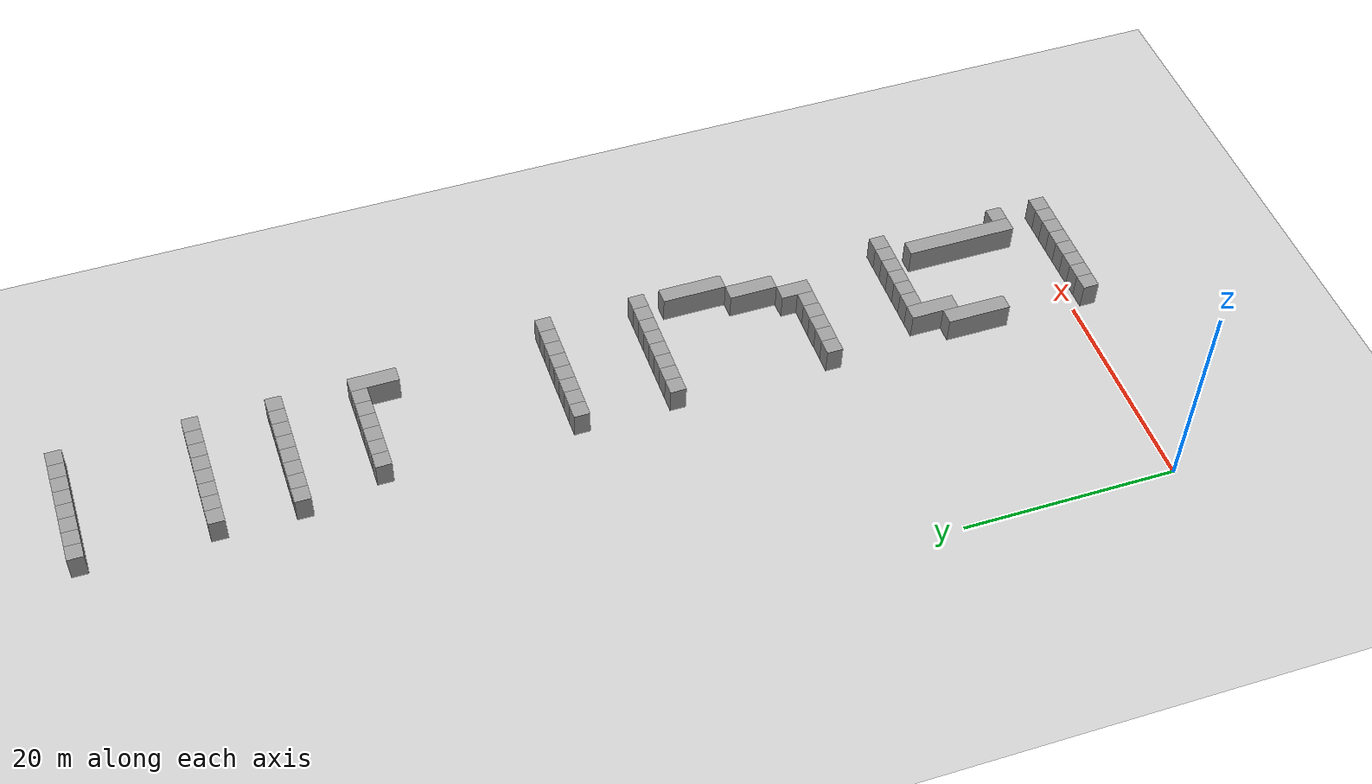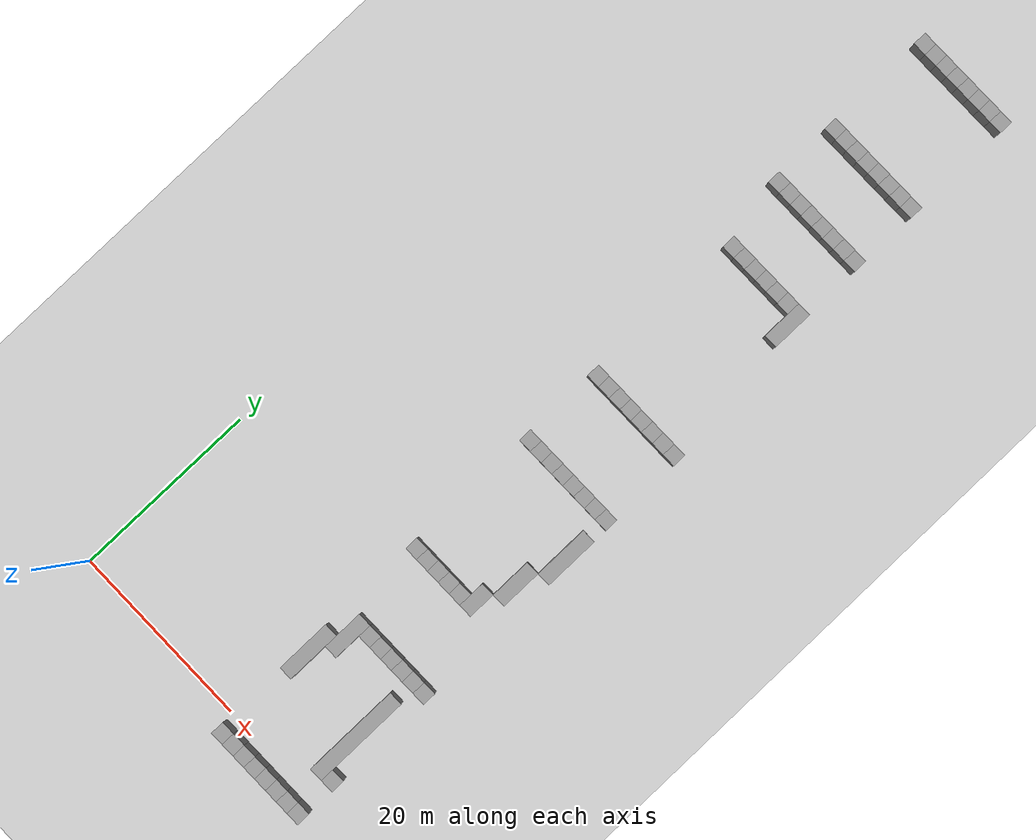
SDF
<sdf version="1.4">
 <world name="1_wall">
  <model name="ground_plane">
   <static>1</static>
   <link name="link">
    <collision name="collision">
     <geometry><plane><normal>0 0 1</normal><size>1000 1000</size></plane></geometry>
     <surface><friction><ode><mu>100</mu><mu2>50</mu2></ode></friction></surface>
    </collision>
    <visual name="visual">
     <cast_shadows>0</cast_shadows>
     <geometry><plane><normal>0 0 1</normal><size>10000 10000</size></plane></geometry>
     <material>
      <script><uri>file://media/materials/scripts/gazebo.material</uri><name>Gazebo/Grey</name></script>
     </material>
    </visual>
    <velocity_decay><linear>0</linear><angular>0</angular></velocity_decay>
   </link>
  </model>
  <model name="Wall_73">
   <static>1</static>
   <link name="Wall_73">
    <collision name="Wall_Collision_73">
     <geometry><box><size>1.5 1.5 2.5</size></box></geometry>
     <pose>0 0 1.25 0 -0 0</pose>
    </collision>
    <visual name="Wall_Visual_73">
     <pose>0 0 1.25 0 -0 0</pose>
     <geometry><box><size>1.5 1.5 2.5</size></box></geometry>
     <material>
      <script><uri>file://media/materials/scripts/gazebo.material</uri><name>Gazebo/Grey</name></script>
     </material>
    </visual>
    <velocity_decay><linear>0</linear><angular>0</angular></velocity_decay>
    <pose>19.5 73.5 0 0 0 1.5707963267948966</pose>
   </link>
  </model>
  <model name="Wall_74">
   <static>1</static>
   <link name="Wall_74">
    <collision name="Wall_Collision_74">
     <geometry><box><size>1.5 1.5 2.5</size></box></geometry>
     <pose>0 0 1.25 0 -0 0</pose>
    </collision>
    <visual name="Wall_Visual_74">
     <pose>0 0 1.25 0 -0 0</pose>
     <geometry><box><size>1.5 1.5 2.5</size></box></geometry>
     <material>
      <script><uri>file://media/materials/scripts/gazebo.material</uri><name>Gazebo/Grey</name></script>
     </material>
    </visual>
    <velocity_decay><linear>0</linear><angular>0</angular></velocity_decay>
    <pose>19.5 81.0 0 0 0 1.5707963267948966</pose>
   </link>
  </model>
  <model name="Wall_75">
   <static>1</static>
   <link name="Wall_75">
    <collision name="Wall_Collision_75">
     <geometry><box><size>1.5 1.5 2.5</size></box></geometry>
     <pose>0 0 1.25 0 -0 0</pose>
    </collision>
    <visual name="Wall_Visual_75">
     <pose>0 0 1.25 0 -0 0</pose>
     <geometry><box><size>1.5 1.5 2.5</size></box></geometry>
     <material>
      <script><uri>file://media/materials/scripts/gazebo.material</uri><name>Gazebo/Grey</name></script>
     </material>
    </visual>
    <velocity_decay><linear>0</linear><angular>0</angular></velocity_decay>
    <pose>19.5 93.0 0 0 0 1.5707963267948966</pose>
   </link>
  </model>
  <model name="Wall_76">
   <static>1</static>
   <link name="Wall_76">
    <collision name="Wall_Collision_76">
     <geometry><box><size>1.5 1.5 2.5</size></box></geometry>
     <pose>0 0 1.25 0 -0 0</pose>
    </collision>
    <visual name="Wall_Visual_76">
     <pose>0 0 1.25 0 -0 0</pose>
     <geometry><box><size>1.5 1.5 2.5</size></box></geometry>
     <material>
      <script><uri>file://media/materials/scripts/gazebo.material</uri><name>Gazebo/Grey</name></script>
     </material>
    </visual>
    <velocity_decay><linear>0</linear><angular>0</angular></velocity_decay>
    <pose>21.0 -1.5 0 0 0 1.5707963267948966</pose>
   </link>
  </model>
  <model name="Wall_77">
   <static>1</static>
   <link name="Wall_77">
    <collision name="Wall_Collision_77">
     <geometry><box><size>6.0 1.5 2.5</size></box></geometry>
     <pose>0 0 1.25 0 -0 0</pose>
    </collision>
    <visual name="Wall_Visual_77">
     <pose>0 0 1.25 0 -0 0</pose>
     <geometry><box><size>6.0 1.5 2.5</size></box></geometry>
     <material>
      <script><uri>file://media/materials/scripts/gazebo.material</uri><name>Gazebo/Grey</name></script>
     </material>
    </visual>
    <velocity_decay><linear>0</linear><angular>0</angular></velocity_decay>
    <pose>21.0 9.75 0 0 0 1.5707963267948966</pose>
   </link>
  </model>
  <model name="Wall_78">
   <static>1</static>
   <link name="Wall_78">
    <collision name="Wall_Collision_78">
     <geometry><box><size>1.5 1.5 2.5</size></box></geometry>
     <pose>0 0 1.25 0 -0 0</pose>
    </collision>
    <visual name="Wall_Visual_78">
     <pose>0 0 1.25 0 -0 0</pose>
     <geometry><box><size>1.5 1.5 2.5</size></box></geometry>
     <material>
      <script><uri>file://media/materials/scripts/gazebo.material</uri><name>Gazebo/Grey</name></script>
     </material>
    </visual>
    <velocity_decay><linear>0</linear><angular>0</angular></velocity_decay>
    <pose>21.0 24.0 0 0 0 1.5707963267948966</pose>
   </link>
  </model>
  <model name="Wall_79">
   <static>1</static>
   <link name="Wall_79">
    <collision name="Wall_Collision_79">
     <geometry><box><size>1.5 1.5 2.5</size></box></geometry>
     <pose>0 0 1.25 0 -0 0</pose>
    </collision>
    <visual name="Wall_Visual_79">
     <pose>0 0 1.25 0 -0 0</pose>
     <geometry><box><size>1.5 1.5 2.5</size></box></geometry>
     <material>
      <script><uri>file://media/materials/scripts/gazebo.material</uri><name>Gazebo/Grey</name></script>
     </material>
    </visual>
    <velocity_decay><linear>0</linear><angular>0</angular></velocity_decay>
    <pose>21.0 39.0 0 0 0 1.5707963267948966</pose>
   </link>
  </model>
  <model name="Wall_80">
   <static>1</static>
   <link name="Wall_80">
    <collision name="Wall_Collision_80">
     <geometry><box><size>1.5 1.5 2.5</size></box></geometry>
     <pose>0 0 1.25 0 -0 0</pose>
    </collision>
    <visual name="Wall_Visual_80">
     <pose>0 0 1.25 0 -0 0</pose>
     <geometry><box><size>1.5 1.5 2.5</size></box></geometry>
     <material>
      <script><uri>file://media/materials/scripts/gazebo.material</uri><name>Gazebo/Grey</name></script>
     </material>
    </visual>
    <velocity_decay><linear>0</linear><angular>0</angular></velocity_decay>
    <pose>21.0 48.0 0 0 0 1.5707963267948966</pose>
   </link>
  </model>
  <model name="Wall_81">
   <static>1</static>
   <link name="Wall_81">
    <collision name="Wall_Collision_81">
     <geometry><box><size>1.5 1.5 2.5</size></box></geometry>
     <pose>0 0 1.25 0 -0 0</pose>
    </collision>
    <visual name="Wall_Visual_81">
     <pose>0 0 1.25 0 -0 0</pose>
     <geometry><box><size>1.5 1.5 2.5</size></box></geometry>
     <material>
      <script><uri>file://media/materials/scripts/gazebo.material</uri><name>Gazebo/Grey</name></script>
     </material>
    </visual>
    <velocity_decay><linear>0</linear><angular>0</angular></velocity_decay>
    <pose>21.0 66.0 0 0 0 1.5707963267948966</pose>
   </link>
  </model>
  <model name="Wall_82">
   <static>1</static>
   <link name="Wall_82">
    <collision name="Wall_Collision_82">
     <geometry><box><size>1.5 1.5 2.5</size></box></geometry>
     <pose>0 0 1.25 0 -0 0</pose>
    </collision>
    <visual name="Wall_Visual_82">
     <pose>0 0 1.25 0 -0 0</pose>
     <geometry><box><size>1.5 1.5 2.5</size></box></geometry>
     <material>
      <script><uri>file://media/materials/scripts/gazebo.material</uri><name>Gazebo/Grey</name></script>
     </material>
    </visual>
    <velocity_decay><linear>0</linear><angular>0</angular></velocity_decay>
    <pose>21.0 73.5 0 0 0 1.5707963267948966</pose>
   </link>
  </model>
  <model name="Wall_83">
   <static>1</static>
   <link name="Wall_83">
    <collision name="Wall_Collision_83">
     <geometry><box><size>1.5 1.5 2.5</size></box></geometry>
     <pose>0 0 1.25 0 -0 0</pose>
    </collision>
    <visual name="Wall_Visual_83">
     <pose>0 0 1.25 0 -0 0</pose>
     <geometry><box><size>1.5 1.5 2.5</size></box></geometry>
     <material>
      <script><uri>file://media/materials/scripts/gazebo.material</uri><name>Gazebo/Grey</name></script>
     </material>
    </visual>
    <velocity_decay><linear>0</linear><angular>0</angular></velocity_decay>
    <pose>21.0 81.0 0 0 0 1.5707963267948966</pose>
   </link>
  </model>
  <model name="Wall_84">
   <static>1</static>
   <link name="Wall_84">
    <collision name="Wall_Collision_84">
     <geometry><box><size>1.5 1.5 2.5</size></box></geometry>
     <pose>0 0 1.25 0 -0 0</pose>
    </collision>
    <visual name="Wall_Visual_84">
     <pose>0 0 1.25 0 -0 0</pose>
     <geometry><box><size>1.5 1.5 2.5</size></box></geometry>
     <material>
      <script><uri>file://media/materials/scripts/gazebo.material</uri><name>Gazebo/Grey</name></script>
     </material>
    </visual>
    <velocity_decay><linear>0</linear><angular>0</angular></velocity_decay>
    <pose>21.0 93.0 0 0 0 1.5707963267948966</pose>
   </link>
  </model>
  <model name="Wall_85">
   <static>1</static>
   <link name="Wall_85">
    <collision name="Wall_Collision_85">
     <geometry><box><size>1.5 1.5 2.5</size></box></geometry>
     <pose>0 0 1.25 0 -0 0</pose>
    </collision>
    <visual name="Wall_Visual_85">
     <pose>0 0 1.25 0 -0 0</pose>
     <geometry><box><size>1.5 1.5 2.5</size></box></geometry>
     <material>
      <script><uri>file://media/materials/scripts/gazebo.material</uri><name>Gazebo/Grey</name></script>
     </material>
    </visual>
    <velocity_decay><linear>0</linear><angular>0</angular></velocity_decay>
    <pose>22.5 -1.5 0 0 0 1.5707963267948966</pose>
   </link>
  </model>
  <model name="Wall_86">
   <static>1</static>
   <link name="Wall_86">
    <collision name="Wall_Collision_86">
     <geometry><box><size>4.5 1.5 2.5</size></box></geometry>
     <pose>0 0 1.25 0 -0 0</pose>
    </collision>
    <visual name="Wall_Visual_86">
     <pose>0 0 1.25 0 -0 0</pose>
     <geometry><box><size>4.5 1.5 2.5</size></box></geometry>
     <material>
      <script><uri>file://media/materials/scripts/gazebo.material</uri><name>Gazebo/Grey</name></script>
     </material>
    </visual>
    <velocity_decay><linear>0</linear><angular>0</angular></velocity_decay>
    <pose>22.5 13.5 0 0 0 1.5707963267948966</pose>
   </link>
  </model>
  <model name="Wall_87">
   <static>1</static>
   <link name="Wall_87">
    <collision name="Wall_Collision_87">
     <geometry><box><size>1.5 1.5 2.5</size></box></geometry>
     <pose>0 0 1.25 0 -0 0</pose>
    </collision>
    <visual name="Wall_Visual_87">
     <pose>0 0 1.25 0 -0 0</pose>
     <geometry><box><size>1.5 1.5 2.5</size></box></geometry>
     <material>
      <script><uri>file://media/materials/scripts/gazebo.material</uri><name>Gazebo/Grey</name></script>
     </material>
    </visual>
    <velocity_decay><linear>0</linear><angular>0</angular></velocity_decay>
    <pose>22.5 24.0 0 0 0 1.5707963267948966</pose>
   </link>
  </model>
  <model name="Wall_88">
   <static>1</static>
   <link name="Wall_88">
    <collision name="Wall_Collision_88">
     <geometry><box><size>1.5 1.5 2.5</size></box></geometry>
     <pose>0 0 1.25 0 -0 0</pose>
    </collision>
    <visual name="Wall_Visual_88">
     <pose>0 0 1.25 0 -0 0</pose>
     <geometry><box><size>1.5 1.5 2.5</size></box></geometry>
     <material>
      <script><uri>file://media/materials/scripts/gazebo.material</uri><name>Gazebo/Grey</name></script>
     </material>
    </visual>
    <velocity_decay><linear>0</linear><angular>0</angular></velocity_decay>
    <pose>22.5 39.0 0 0 0 1.5707963267948966</pose>
   </link>
  </model>
  <model name="Wall_89">
   <static>1</static>
   <link name="Wall_89">
    <collision name="Wall_Collision_89">
     <geometry><box><size>1.5 1.5 2.5</size></box></geometry>
     <pose>0 0 1.25 0 -0 0</pose>
    </collision>
    <visual name="Wall_Visual_89">
     <pose>0 0 1.25 0 -0 0</pose>
     <geometry><box><size>1.5 1.5 2.5</size></box></geometry>
     <material>
      <script><uri>file://media/materials/scripts/gazebo.material</uri><name>Gazebo/Grey</name></script>
     </material>
    </visual>
    <velocity_decay><linear>0</linear><angular>0</angular></velocity_decay>
    <pose>22.5 48.0 0 0 0 1.5707963267948966</pose>
   </link>
  </model>
  <model name="Wall_90">
   <static>1</static>
   <link name="Wall_90">
    <collision name="Wall_Collision_90">
     <geometry><box><size>1.5 1.5 2.5</size></box></geometry>
     <pose>0 0 1.25 0 -0 0</pose>
    </collision>
    <visual name="Wall_Visual_90">
     <pose>0 0 1.25 0 -0 0</pose>
     <geometry><box><size>1.5 1.5 2.5</size></box></geometry>
     <material>
      <script><uri>file://media/materials/scripts/gazebo.material</uri><name>Gazebo/Grey</name></script>
     </material>
    </visual>
    <velocity_decay><linear>0</linear><angular>0</angular></velocity_decay>
    <pose>22.5 66.0 0 0 0 1.5707963267948966</pose>
   </link>
  </model>
  <model name="Wall_91">
   <static>1</static>
   <link name="Wall_91">
    <collision name="Wall_Collision_91">
     <geometry><box><size>1.5 1.5 2.5</size></box></geometry>
     <pose>0 0 1.25 0 -0 0</pose>
    </collision>
    <visual name="Wall_Visual_91">
     <pose>0 0 1.25 0 -0 0</pose>
     <geometry><box><size>1.5 1.5 2.5</size></box></geometry>
     <material>
      <script><uri>file://media/materials/scripts/gazebo.material</uri><name>Gazebo/Grey</name></script>
     </material>
    </visual>
    <velocity_decay><linear>0</linear><angular>0</angular></velocity_decay>
    <pose>22.5 73.5 0 0 0 1.5707963267948966</pose>
   </link>
  </model>
  <model name="Wall_92">
   <static>1</static>
   <link name="Wall_92">
    <collision name="Wall_Collision_92">
     <geometry><box><size>1.5 1.5 2.5</size></box></geometry>
     <pose>0 0 1.25 0 -0 0</pose>
    </collision>
    <visual name="Wall_Visual_92">
     <pose>0 0 1.25 0 -0 0</pose>
     <geometry><box><size>1.5 1.5 2.5</size></box></geometry>
     <material>
      <script><uri>file://media/materials/scripts/gazebo.material</uri><name>Gazebo/Grey</name></script>
     </material>
    </visual>
    <velocity_decay><linear>0</linear><angular>0</angular></velocity_decay>
    <pose>22.5 81.0 0 0 0 1.5707963267948966</pose>
   </link>
  </model>
  <model name="Wall_93">
   <static>1</static>
   <link name="Wall_93">
    <collision name="Wall_Collision_93">
     <geometry><box><size>1.5 1.5 2.5</size></box></geometry>
     <pose>0 0 1.25 0 -0 0</pose>
    </collision>
    <visual name="Wall_Visual_93">
     <pose>0 0 1.25 0 -0 0</pose>
     <geometry><box><size>1.5 1.5 2.5</size></box></geometry>
     <material>
      <script><uri>file://media/materials/scripts/gazebo.material</uri><name>Gazebo/Grey</name></script>
     </material>
    </visual>
    <velocity_decay><linear>0</linear><angular>0</angular></velocity_decay>
    <pose>22.5 93.0 0 0 0 1.5707963267948966</pose>
   </link>
  </model>
  <model name="Wall_94">
   <static>1</static>
   <link name="Wall_94">
    <collision name="Wall_Collision_94">
     <geometry><box><size>1.5 1.5 2.5</size></box></geometry>
     <pose>0 0 1.25 0 -0 0</pose>
    </collision>
    <visual name="Wall_Visual_94">
     <pose>0 0 1.25 0 -0 0</pose>
     <geometry><box><size>1.5 1.5 2.5</size></box></geometry>
     <material>
      <script><uri>file://media/materials/scripts/gazebo.material</uri><name>Gazebo/Grey</name></script>
     </material>
    </visual>
    <velocity_decay><linear>0</linear><angular>0</angular></velocity_decay>
    <pose>24.0 -1.5 0 0 0 1.5707963267948966</pose>
   </link>
  </model>
  <model name="Wall_95">
   <static>1</static>
   <link name="Wall_95">
    <collision name="Wall_Collision_95">
     <geometry><box><size>1.5 1.5 2.5</size></box></geometry>
     <pose>0 0 1.25 0 -0 0</pose>
    </collision>
    <visual name="Wall_Visual_95">
     <pose>0 0 1.25 0 -0 0</pose>
     <geometry><box><size>1.5 1.5 2.5</size></box></geometry>
     <material>
      <script><uri>file://media/materials/scripts/gazebo.material</uri><name>Gazebo/Grey</name></script>
     </material>
    </visual>
    <velocity_decay><linear>0</linear><angular>0</angular></velocity_decay>
    <pose>24.0 15.0 0 0 0 1.5707963267948966</pose>
   </link>
  </model>
  <model name="Wall_96">
   <static>1</static>
   <link name="Wall_96">
    <collision name="Wall_Collision_96">
     <geometry><box><size>1.5 1.5 2.5</size></box></geometry>
     <pose>0 0 1.25 0 -0 0</pose>
    </collision>
    <visual name="Wall_Visual_96">
     <pose>0 0 1.25 0 -0 0</pose>
     <geometry><box><size>1.5 1.5 2.5</size></box></geometry>
     <material>
      <script><uri>file://media/materials/scripts/gazebo.material</uri><name>Gazebo/Grey</name></script>
     </material>
    </visual>
    <velocity_decay><linear>0</linear><angular>0</angular></velocity_decay>
    <pose>24.0 24.0 0 0 0 1.5707963267948966</pose>
   </link>
  </model>
  <model name="Wall_97">
   <static>1</static>
   <link name="Wall_97">
    <collision name="Wall_Collision_97">
     <geometry><box><size>1.5 1.5 2.5</size></box></geometry>
     <pose>0 0 1.25 0 -0 0</pose>
    </collision>
    <visual name="Wall_Visual_97">
     <pose>0 0 1.25 0 -0 0</pose>
     <geometry><box><size>1.5 1.5 2.5</size></box></geometry>
     <material>
      <script><uri>file://media/materials/scripts/gazebo.material</uri><name>Gazebo/Grey</name></script>
     </material>
    </visual>
    <velocity_decay><linear>0</linear><angular>0</angular></velocity_decay>
    <pose>24.0 39.0 0 0 0 1.5707963267948966</pose>
   </link>
  </model>
  <model name="Wall_98">
   <static>1</static>
   <link name="Wall_98">
    <collision name="Wall_Collision_98">
     <geometry><box><size>1.5 1.5 2.5</size></box></geometry>
     <pose>0 0 1.25 0 -0 0</pose>
    </collision>
    <visual name="Wall_Visual_98">
     <pose>0 0 1.25 0 -0 0</pose>
     <geometry><box><size>1.5 1.5 2.5</size></box></geometry>
     <material>
      <script><uri>file://media/materials/scripts/gazebo.material</uri><name>Gazebo/Grey</name></script>
     </material>
    </visual>
    <velocity_decay><linear>0</linear><angular>0</angular></velocity_decay>
    <pose>24.0 48.0 0 0 0 1.5707963267948966</pose>
   </link>
  </model>
  <model name="Wall_99">
   <static>1</static>
   <link name="Wall_99">
    <collision name="Wall_Collision_99">
     <geometry><box><size>1.5 1.5 2.5</size></box></geometry>
     <pose>0 0 1.25 0 -0 0</pose>
    </collision>
    <visual name="Wall_Visual_99">
     <pose>0 0 1.25 0 -0 0</pose>
     <geometry><box><size>1.5 1.5 2.5</size></box></geometry>
     <material>
      <script><uri>file://media/materials/scripts/gazebo.material</uri><name>Gazebo/Grey</name></script>
     </material>
    </visual>
    <velocity_decay><linear>0</linear><angular>0</angular></velocity_decay>
    <pose>24.0 66.0 0 0 0 1.5707963267948966</pose>
   </link>
  </model>
  <model name="Wall_100">
   <static>1</static>
   <link name="Wall_100">
    <collision name="Wall_Collision_100">
     <geometry><box><size>1.5 1.5 2.5</size></box></geometry>
     <pose>0 0 1.25 0 -0 0</pose>
    </collision>
    <visual name="Wall_Visual_100">
     <pose>0 0 1.25 0 -0 0</pose>
     <geometry><box><size>1.5 1.5 2.5</size></box></geometry>
     <material>
      <script><uri>file://media/materials/scripts/gazebo.material</uri><name>Gazebo/Grey</name></script>
     </material>
    </visual>
    <velocity_decay><linear>0</linear><angular>0</angular></velocity_decay>
    <pose>24.0 73.5 0 0 0 1.5707963267948966</pose>
   </link>
  </model>
  <model name="Wall_101">
   <static>1</static>
   <link name="Wall_101">
    <collision name="Wall_Collision_101">
     <geometry><box><size>1.5 1.5 2.5</size></box></geometry>
     <pose>0 0 1.25 0 -0 0</pose>
    </collision>
    <visual name="Wall_Visual_101">
     <pose>0 0 1.25 0 -0 0</pose>
     <geometry><box><size>1.5 1.5 2.5</size></box></geometry>
     <material>
      <script><uri>file://media/materials/scripts/gazebo.material</uri><name>Gazebo/Grey</name></script>
     </material>
    </visual>
    <velocity_decay><linear>0</linear><angular>0</angular></velocity_decay>
    <pose>24.0 81.0 0 0 0 1.5707963267948966</pose>
   </link>
  </model>
  <model name="Wall_102">
   <static>1</static>
   <link name="Wall_102">
    <collision name="Wall_Collision_102">
     <geometry><box><size>1.5 1.5 2.5</size></box></geometry>
     <pose>0 0 1.25 0 -0 0</pose>
    </collision>
    <visual name="Wall_Visual_102">
     <pose>0 0 1.25 0 -0 0</pose>
     <geometry><box><size>1.5 1.5 2.5</size></box></geometry>
     <material>
      <script><uri>file://media/materials/scripts/gazebo.material</uri><name>Gazebo/Grey</name></script>
     </material>
    </visual>
    <velocity_decay><linear>0</linear><angular>0</angular></velocity_decay>
    <pose>24.0 93.0 0 0 0 1.5707963267948966</pose>
   </link>
  </model>
  <model name="Wall_103">
   <static>1</static>
   <link name="Wall_103">
    <collision name="Wall_Collision_103">
     <geometry><box><size>1.5 1.5 2.5</size></box></geometry>
     <pose>0 0 1.25 0 -0 0</pose>
    </collision>
    <visual name="Wall_Visual_103">
     <pose>0 0 1.25 0 -0 0</pose>
     <geometry><box><size>1.5 1.5 2.5</size></box></geometry>
     <material>
      <script><uri>file://media/materials/scripts/gazebo.material</uri><name>Gazebo/Grey</name></script>
     </material>
    </visual>
    <velocity_decay><linear>0</linear><angular>0</angular></velocity_decay>
    <pose>25.5 -1.5 0 0 0 1.5707963267948966</pose>
   </link>
  </model>
  <model name="Wall_104">
   <static>1</static>
   <link name="Wall_104">
    <collision name="Wall_Collision_104">
     <geometry><box><size>1.5 1.5 2.5</size></box></geometry>
     <pose>0 0 1.25 0 -0 0</pose>
    </collision>
    <visual name="Wall_Visual_104">
     <pose>0 0 1.25 0 -0 0</pose>
     <geometry><box><size>1.5 1.5 2.5</size></box></geometry>
     <material>
      <script><uri>file://media/materials/scripts/gazebo.material</uri><name>Gazebo/Grey</name></script>
     </material>
    </visual>
    <velocity_decay><linear>0</linear><angular>0</angular></velocity_decay>
    <pose>25.5 15.0 0 0 0 1.5707963267948966</pose>
   </link>
  </model>
  <model name="Wall_105">
   <static>1</static>
   <link name="Wall_105">
    <collision name="Wall_Collision_105">
     <geometry><box><size>1.5 1.5 2.5</size></box></geometry>
     <pose>0 0 1.25 0 -0 0</pose>
    </collision>
    <visual name="Wall_Visual_105">
     <pose>0 0 1.25 0 -0 0</pose>
     <geometry><box><size>1.5 1.5 2.5</size></box></geometry>
     <material>
      <script><uri>file://media/materials/scripts/gazebo.material</uri><name>Gazebo/Grey</name></script>
     </material>
    </visual>
    <velocity_decay><linear>0</linear><angular>0</angular></velocity_decay>
    <pose>25.5 24.0 0 0 0 1.5707963267948966</pose>
   </link>
  </model>
  <model name="Wall_106">
   <static>1</static>
   <link name="Wall_106">
    <collision name="Wall_Collision_106">
     <geometry><box><size>1.5 1.5 2.5</size></box></geometry>
     <pose>0 0 1.25 0 -0 0</pose>
    </collision>
    <visual name="Wall_Visual_106">
     <pose>0 0 1.25 0 -0 0</pose>
     <geometry><box><size>1.5 1.5 2.5</size></box></geometry>
     <material>
      <script><uri>file://media/materials/scripts/gazebo.material</uri><name>Gazebo/Grey</name></script>
     </material>
    </visual>
    <velocity_decay><linear>0</linear><angular>0</angular></velocity_decay>
    <pose>25.5 39.0 0 0 0 1.5707963267948966</pose>
   </link>
  </model>
  <model name="Wall_107">
   <static>1</static>
   <link name="Wall_107">
    <collision name="Wall_Collision_107">
     <geometry><box><size>1.5 1.5 2.5</size></box></geometry>
     <pose>0 0 1.25 0 -0 0</pose>
    </collision>
    <visual name="Wall_Visual_107">
     <pose>0 0 1.25 0 -0 0</pose>
     <geometry><box><size>1.5 1.5 2.5</size></box></geometry>
     <material>
      <script><uri>file://media/materials/scripts/gazebo.material</uri><name>Gazebo/Grey</name></script>
     </material>
    </visual>
    <velocity_decay><linear>0</linear><angular>0</angular></velocity_decay>
    <pose>25.5 48.0 0 0 0 1.5707963267948966</pose>
   </link>
  </model>
  <model name="Wall_108">
   <static>1</static>
   <link name="Wall_108">
    <collision name="Wall_Collision_108">
     <geometry><box><size>1.5 1.5 2.5</size></box></geometry>
     <pose>0 0 1.25 0 -0 0</pose>
    </collision>
    <visual name="Wall_Visual_108">
     <pose>0 0 1.25 0 -0 0</pose>
     <geometry><box><size>1.5 1.5 2.5</size></box></geometry>
     <material>
      <script><uri>file://media/materials/scripts/gazebo.material</uri><name>Gazebo/Grey</name></script>
     </material>
    </visual>
    <velocity_decay><linear>0</linear><angular>0</angular></velocity_decay>
    <pose>25.5 66.0 0 0 0 1.5707963267948966</pose>
   </link>
  </model>
  <model name="Wall_109">
   <static>1</static>
   <link name="Wall_109">
    <collision name="Wall_Collision_109">
     <geometry><box><size>1.5 1.5 2.5</size></box></geometry>
     <pose>0 0 1.25 0 -0 0</pose>
    </collision>
    <visual name="Wall_Visual_109">
     <pose>0 0 1.25 0 -0 0</pose>
     <geometry><box><size>1.5 1.5 2.5</size></box></geometry>
     <material>
      <script><uri>file://media/materials/scripts/gazebo.material</uri><name>Gazebo/Grey</name></script>
     </material>
    </visual>
    <velocity_decay><linear>0</linear><angular>0</angular></velocity_decay>
    <pose>25.5 73.5 0 0 0 1.5707963267948966</pose>
   </link>
  </model>
  <model name="Wall_110">
   <static>1</static>
   <link name="Wall_110">
    <collision name="Wall_Collision_110">
     <geometry><box><size>1.5 1.5 2.5</size></box></geometry>
     <pose>0 0 1.25 0 -0 0</pose>
    </collision>
    <visual name="Wall_Visual_110">
     <pose>0 0 1.25 0 -0 0</pose>
     <geometry><box><size>1.5 1.5 2.5</size></box></geometry>
     <material>
      <script><uri>file://media/materials/scripts/gazebo.material</uri><name>Gazebo/Grey</name></script>
     </material>
    </visual>
    <velocity_decay><linear>0</linear><angular>0</angular></velocity_decay>
    <pose>25.5 81.0 0 0 0 1.5707963267948966</pose>
   </link>
  </model>
  <model name="Wall_111">
   <static>1</static>
   <link name="Wall_111">
    <collision name="Wall_Collision_111">
     <geometry><box><size>1.5 1.5 2.5</size></box></geometry>
     <pose>0 0 1.25 0 -0 0</pose>
    </collision>
    <visual name="Wall_Visual_111">
     <pose>0 0 1.25 0 -0 0</pose>
     <geometry><box><size>1.5 1.5 2.5</size></box></geometry>
     <material>
      <script><uri>file://media/materials/scripts/gazebo.material</uri><name>Gazebo/Grey</name></script>
     </material>
    </visual>
    <velocity_decay><linear>0</linear><angular>0</angular></velocity_decay>
    <pose>25.5 93.0 0 0 0 1.5707963267948966</pose>
   </link>
  </model>
  <model name="Wall_112">
   <static>1</static>
   <link name="Wall_112">
    <collision name="Wall_Collision_112">
     <geometry><box><size>1.5 1.5 2.5</size></box></geometry>
     <pose>0 0 1.25 0 -0 0</pose>
    </collision>
    <visual name="Wall_Visual_112">
     <pose>0 0 1.25 0 -0 0</pose>
     <geometry><box><size>1.5 1.5 2.5</size></box></geometry>
     <material>
      <script><uri>file://media/materials/scripts/gazebo.material</uri><name>Gazebo/Grey</name></script>
     </material>
    </visual>
    <velocity_decay><linear>0</linear><angular>0</angular></velocity_decay>
    <pose>27.0 -1.5 0 0 0 1.5707963267948966</pose>
   </link>
  </model>
  <model name="Wall_113">
   <static>1</static>
   <link name="Wall_113">
    <collision name="Wall_Collision_113">
     <geometry><box><size>1.5 1.5 2.5</size></box></geometry>
     <pose>0 0 1.25 0 -0 0</pose>
    </collision>
    <visual name="Wall_Visual_113">
     <pose>0 0 1.25 0 -0 0</pose>
     <geometry><box><size>1.5 1.5 2.5</size></box></geometry>
     <material>
      <script><uri>file://media/materials/scripts/gazebo.material</uri><name>Gazebo/Grey</name></script>
     </material>
    </visual>
    <velocity_decay><linear>0</linear><angular>0</angular></velocity_decay>
    <pose>27.0 15.0 0 0 0 1.5707963267948966</pose>
   </link>
  </model>
  <model name="Wall_114">
   <static>1</static>
   <link name="Wall_114">
    <collision name="Wall_Collision_114">
     <geometry><box><size>1.5 1.5 2.5</size></box></geometry>
     <pose>0 0 1.25 0 -0 0</pose>
    </collision>
    <visual name="Wall_Visual_114">
     <pose>0 0 1.25 0 -0 0</pose>
     <geometry><box><size>1.5 1.5 2.5</size></box></geometry>
     <material>
      <script><uri>file://media/materials/scripts/gazebo.material</uri><name>Gazebo/Grey</name></script>
     </material>
    </visual>
    <velocity_decay><linear>0</linear><angular>0</angular></velocity_decay>
    <pose>27.0 24.0 0 0 0 1.5707963267948966</pose>
   </link>
  </model>
  <model name="Wall_115">
   <static>1</static>
   <link name="Wall_115">
    <collision name="Wall_Collision_115">
     <geometry><box><size>1.5 1.5 2.5</size></box></geometry>
     <pose>0 0 1.25 0 -0 0</pose>
    </collision>
    <visual name="Wall_Visual_115">
     <pose>0 0 1.25 0 -0 0</pose>
     <geometry><box><size>1.5 1.5 2.5</size></box></geometry>
     <material>
      <script><uri>file://media/materials/scripts/gazebo.material</uri><name>Gazebo/Grey</name></script>
     </material>
    </visual>
    <velocity_decay><linear>0</linear><angular>0</angular></velocity_decay>
    <pose>27.0 39.0 0 0 0 1.5707963267948966</pose>
   </link>
  </model>
  <model name="Wall_116">
   <static>1</static>
   <link name="Wall_116">
    <collision name="Wall_Collision_116">
     <geometry><box><size>1.5 1.5 2.5</size></box></geometry>
     <pose>0 0 1.25 0 -0 0</pose>
    </collision>
    <visual name="Wall_Visual_116">
     <pose>0 0 1.25 0 -0 0</pose>
     <geometry><box><size>1.5 1.5 2.5</size></box></geometry>
     <material>
      <script><uri>file://media/materials/scripts/gazebo.material</uri><name>Gazebo/Grey</name></script>
     </material>
    </visual>
    <velocity_decay><linear>0</linear><angular>0</angular></velocity_decay>
    <pose>27.0 48.0 0 0 0 1.5707963267948966</pose>
   </link>
  </model>
  <model name="Wall_117">
   <static>1</static>
   <link name="Wall_117">
    <collision name="Wall_Collision_117">
     <geometry><box><size>1.5 1.5 2.5</size></box></geometry>
     <pose>0 0 1.25 0 -0 0</pose>
    </collision>
    <visual name="Wall_Visual_117">
     <pose>0 0 1.25 0 -0 0</pose>
     <geometry><box><size>1.5 1.5 2.5</size></box></geometry>
     <material>
      <script><uri>file://media/materials/scripts/gazebo.material</uri><name>Gazebo/Grey</name></script>
     </material>
    </visual>
    <velocity_decay><linear>0</linear><angular>0</angular></velocity_decay>
    <pose>27.0 66.0 0 0 0 1.5707963267948966</pose>
   </link>
  </model>
  <model name="Wall_118">
   <static>1</static>
   <link name="Wall_118">
    <collision name="Wall_Collision_118">
     <geometry><box><size>1.5 1.5 2.5</size></box></geometry>
     <pose>0 0 1.25 0 -0 0</pose>
    </collision>
    <visual name="Wall_Visual_118">
     <pose>0 0 1.25 0 -0 0</pose>
     <geometry><box><size>1.5 1.5 2.5</size></box></geometry>
     <material>
      <script><uri>file://media/materials/scripts/gazebo.material</uri><name>Gazebo/Grey</name></script>
     </material>
    </visual>
    <velocity_decay><linear>0</linear><angular>0</angular></velocity_decay>
    <pose>27.0 73.5 0 0 0 1.5707963267948966</pose>
   </link>
  </model>
  <model name="Wall_119">
   <static>1</static>
   <link name="Wall_119">
    <collision name="Wall_Collision_119">
     <geometry><box><size>1.5 1.5 2.5</size></box></geometry>
     <pose>0 0 1.25 0 -0 0</pose>
    </collision>
    <visual name="Wall_Visual_119">
     <pose>0 0 1.25 0 -0 0</pose>
     <geometry><box><size>1.5 1.5 2.5</size></box></geometry>
     <material>
      <script><uri>file://media/materials/scripts/gazebo.material</uri><name>Gazebo/Grey</name></script>
     </material>
    </visual>
    <velocity_decay><linear>0</linear><angular>0</angular></velocity_decay>
    <pose>27.0 81.0 0 0 0 1.5707963267948966</pose>
   </link>
  </model>
  <model name="Wall_120">
   <static>1</static>
   <link name="Wall_120">
    <collision name="Wall_Collision_120">
     <geometry><box><size>1.5 1.5 2.5</size></box></geometry>
     <pose>0 0 1.25 0 -0 0</pose>
    </collision>
    <visual name="Wall_Visual_120">
     <pose>0 0 1.25 0 -0 0</pose>
     <geometry><box><size>1.5 1.5 2.5</size></box></geometry>
     <material>
      <script><uri>file://media/materials/scripts/gazebo.material</uri><name>Gazebo/Grey</name></script>
     </material>
    </visual>
    <velocity_decay><linear>0</linear><angular>0</angular></velocity_decay>
    <pose>27.0 93.0 0 0 0 1.5707963267948966</pose>
   </link>
  </model>
  <model name="Wall_121">
   <static>1</static>
   <link name="Wall_121">
    <collision name="Wall_Collision_121">
     <geometry><box><size>1.5 1.5 2.5</size></box></geometry>
     <pose>0 0 1.25 0 -0 0</pose>
    </collision>
    <visual name="Wall_Visual_121">
     <pose>0 0 1.25 0 -0 0</pose>
     <geometry><box><size>1.5 1.5 2.5</size></box></geometry>
     <material>
      <script><uri>file://media/materials/scripts/gazebo.material</uri><name>Gazebo/Grey</name></script>
     </material>
    </visual>
    <velocity_decay><linear>0</linear><angular>0</angular></velocity_decay>
    <pose>28.5 -1.5 0 0 0 1.5707963267948966</pose>
   </link>
  </model>
  <model name="Wall_122">
   <static>1</static>
   <link name="Wall_122">
    <collision name="Wall_Collision_122">
     <geometry><box><size>1.5 1.5 2.5</size></box></geometry>
     <pose>0 0 1.25 0 -0 0</pose>
    </collision>
    <visual name="Wall_Visual_122">
     <pose>0 0 1.25 0 -0 0</pose>
     <geometry><box><size>1.5 1.5 2.5</size></box></geometry>
     <material>
      <script><uri>file://media/materials/scripts/gazebo.material</uri><name>Gazebo/Grey</name></script>
     </material>
    </visual>
    <velocity_decay><linear>0</linear><angular>0</angular></velocity_decay>
    <pose>28.5 15.0 0 0 0 1.5707963267948966</pose>
   </link>
  </model>
  <model name="Wall_123">
   <static>1</static>
   <link name="Wall_123">
    <collision name="Wall_Collision_123">
     <geometry><box><size>3.0 1.5 2.5</size></box></geometry>
     <pose>0 0 1.25 0 -0 0</pose>
    </collision>
    <visual name="Wall_Visual_123">
     <pose>0 0 1.25 0 -0 0</pose>
     <geometry><box><size>3.0 1.5 2.5</size></box></geometry>
     <material>
      <script><uri>file://media/materials/scripts/gazebo.material</uri><name>Gazebo/Grey</name></script>
     </material>
    </visual>
    <velocity_decay><linear>0</linear><angular>0</angular></velocity_decay>
    <pose>28.5 24.75 0 0 0 1.5707963267948966</pose>
   </link>
  </model>
  <model name="Wall_124">
   <static>1</static>
   <link name="Wall_124">
    <collision name="Wall_Collision_124">
     <geometry><box><size>1.5 1.5 2.5</size></box></geometry>
     <pose>0 0 1.25 0 -0 0</pose>
    </collision>
    <visual name="Wall_Visual_124">
     <pose>0 0 1.25 0 -0 0</pose>
     <geometry><box><size>1.5 1.5 2.5</size></box></geometry>
     <material>
      <script><uri>file://media/materials/scripts/gazebo.material</uri><name>Gazebo/Grey</name></script>
     </material>
    </visual>
    <velocity_decay><linear>0</linear><angular>0</angular></velocity_decay>
    <pose>28.5 39.0 0 0 0 1.5707963267948966</pose>
   </link>
  </model>
  <model name="Wall_125">
   <static>1</static>
   <link name="Wall_125">
    <collision name="Wall_Collision_125">
     <geometry><box><size>1.5 1.5 2.5</size></box></geometry>
     <pose>0 0 1.25 0 -0 0</pose>
    </collision>
    <visual name="Wall_Visual_125">
     <pose>0 0 1.25 0 -0 0</pose>
     <geometry><box><size>1.5 1.5 2.5</size></box></geometry>
     <material>
      <script><uri>file://media/materials/scripts/gazebo.material</uri><name>Gazebo/Grey</name></script>
     </material>
    </visual>
    <velocity_decay><linear>0</linear><angular>0</angular></velocity_decay>
    <pose>28.5 48.0 0 0 0 1.5707963267948966</pose>
   </link>
  </model>
  <model name="Wall_126">
   <static>1</static>
   <link name="Wall_126">
    <collision name="Wall_Collision_126">
     <geometry><box><size>1.5 1.5 2.5</size></box></geometry>
     <pose>0 0 1.25 0 -0 0</pose>
    </collision>
    <visual name="Wall_Visual_126">
     <pose>0 0 1.25 0 -0 0</pose>
     <geometry><box><size>1.5 1.5 2.5</size></box></geometry>
     <material>
      <script><uri>file://media/materials/scripts/gazebo.material</uri><name>Gazebo/Grey</name></script>
     </material>
    </visual>
    <velocity_decay><linear>0</linear><angular>0</angular></velocity_decay>
    <pose>28.5 66.0 0 0 0 1.5707963267948966</pose>
   </link>
  </model>
  <model name="Wall_127">
   <static>1</static>
   <link name="Wall_127">
    <collision name="Wall_Collision_127">
     <geometry><box><size>1.5 1.5 2.5</size></box></geometry>
     <pose>0 0 1.25 0 -0 0</pose>
    </collision>
    <visual name="Wall_Visual_127">
     <pose>0 0 1.25 0 -0 0</pose>
     <geometry><box><size>1.5 1.5 2.5</size></box></geometry>
     <material>
      <script><uri>file://media/materials/scripts/gazebo.material</uri><name>Gazebo/Grey</name></script>
     </material>
    </visual>
    <velocity_decay><linear>0</linear><angular>0</angular></velocity_decay>
    <pose>28.5 73.5 0 0 0 1.5707963267948966</pose>
   </link>
  </model>
  <model name="Wall_128">
   <static>1</static>
   <link name="Wall_128">
    <collision name="Wall_Collision_128">
     <geometry><box><size>1.5 1.5 2.5</size></box></geometry>
     <pose>0 0 1.25 0 -0 0</pose>
    </collision>
    <visual name="Wall_Visual_128">
     <pose>0 0 1.25 0 -0 0</pose>
     <geometry><box><size>1.5 1.5 2.5</size></box></geometry>
     <material>
      <script><uri>file://media/materials/scripts/gazebo.material</uri><name>Gazebo/Grey</name></script>
     </material>
    </visual>
    <velocity_decay><linear>0</linear><angular>0</angular></velocity_decay>
    <pose>28.5 81.0 0 0 0 1.5707963267948966</pose>
   </link>
  </model>
  <model name="Wall_129">
   <static>1</static>
   <link name="Wall_129">
    <collision name="Wall_Collision_129">
     <geometry><box><size>1.5 1.5 2.5</size></box></geometry>
     <pose>0 0 1.25 0 -0 0</pose>
    </collision>
    <visual name="Wall_Visual_129">
     <pose>0 0 1.25 0 -0 0</pose>
     <geometry><box><size>1.5 1.5 2.5</size></box></geometry>
     <material>
      <script><uri>file://media/materials/scripts/gazebo.material</uri><name>Gazebo/Grey</name></script>
     </material>
    </visual>
    <velocity_decay><linear>0</linear><angular>0</angular></velocity_decay>
    <pose>28.5 93.0 0 0 0 1.5707963267948966</pose>
   </link>
  </model>
  <model name="Wall_130">
   <static>1</static>
   <link name="Wall_130">
    <collision name="Wall_Collision_130">
     <geometry><box><size>1.5 1.5 2.5</size></box></geometry>
     <pose>0 0 1.25 0 -0 0</pose>
    </collision>
    <visual name="Wall_Visual_130">
     <pose>0 0 1.25 0 -0 0</pose>
     <geometry><box><size>1.5 1.5 2.5</size></box></geometry>
     <material>
      <script><uri>file://media/materials/scripts/gazebo.material</uri><name>Gazebo/Grey</name></script>
     </material>
    </visual>
    <velocity_decay><linear>0</linear><angular>0</angular></velocity_decay>
    <pose>30.0 -1.5 0 0 0 1.5707963267948966</pose>
   </link>
  </model>
  <model name="Wall_131">
   <static>1</static>
   <link name="Wall_131">
    <collision name="Wall_Collision_131">
     <geometry><box><size>10.5 1.5 2.5</size></box></geometry>
     <pose>0 0 1.25 0 -0 0</pose>
    </collision>
    <visual name="Wall_Visual_131">
     <pose>0 0 1.25 0 -0 0</pose>
     <geometry><box><size>10.5 1.5 2.5</size></box></geometry>
     <material>
      <script><uri>file://media/materials/scripts/gazebo.material</uri><name>Gazebo/Grey</name></script>
     </material>
    </visual>
    <velocity_decay><linear>0</linear><angular>0</angular></velocity_decay>
    <pose>30.0 7.5 0 0 0 1.5707963267948966</pose>
   </link>
  </model>
  <model name="Wall_132">
   <static>1</static>
   <link name="Wall_132">
    <collision name="Wall_Collision_132">
     <geometry><box><size>1.5 1.5 2.5</size></box></geometry>
     <pose>0 0 1.25 0 -0 0</pose>
    </collision>
    <visual name="Wall_Visual_132">
     <pose>0 0 1.25 0 -0 0</pose>
     <geometry><box><size>1.5 1.5 2.5</size></box></geometry>
     <material>
      <script><uri>file://media/materials/scripts/gazebo.material</uri><name>Gazebo/Grey</name></script>
     </material>
    </visual>
    <velocity_decay><linear>0</linear><angular>0</angular></velocity_decay>
    <pose>30.0 15.0 0 0 0 1.5707963267948966</pose>
   </link>
  </model>
  <model name="Wall_133">
   <static>1</static>
   <link name="Wall_133">
    <collision name="Wall_Collision_133">
     <geometry><box><size>4.5 1.5 2.5</size></box></geometry>
     <pose>0 0 1.25 0 -0 0</pose>
    </collision>
    <visual name="Wall_Visual_133">
     <pose>0 0 1.25 0 -0 0</pose>
     <geometry><box><size>4.5 1.5 2.5</size></box></geometry>
     <material>
      <script><uri>file://media/materials/scripts/gazebo.material</uri><name>Gazebo/Grey</name></script>
     </material>
    </visual>
    <velocity_decay><linear>0</linear><angular>0</angular></velocity_decay>
    <pose>30.0 28.5 0 0 0 1.5707963267948966</pose>
   </link>
  </model>
  <model name="Wall_134">
   <static>1</static>
   <link name="Wall_134">
    <collision name="Wall_Collision_134">
     <geometry><box><size>1.5 1.5 2.5</size></box></geometry>
     <pose>0 0 1.25 0 -0 0</pose>
    </collision>
    <visual name="Wall_Visual_134">
     <pose>0 0 1.25 0 -0 0</pose>
     <geometry><box><size>1.5 1.5 2.5</size></box></geometry>
     <material>
      <script><uri>file://media/materials/scripts/gazebo.material</uri><name>Gazebo/Grey</name></script>
     </material>
    </visual>
    <velocity_decay><linear>0</linear><angular>0</angular></velocity_decay>
    <pose>30.0 39.0 0 0 0 1.5707963267948966</pose>
   </link>
  </model>
  <model name="Wall_135">
   <static>1</static>
   <link name="Wall_135">
    <collision name="Wall_Collision_135">
     <geometry><box><size>1.5 1.5 2.5</size></box></geometry>
     <pose>0 0 1.25 0 -0 0</pose>
    </collision>
    <visual name="Wall_Visual_135">
     <pose>0 0 1.25 0 -0 0</pose>
     <geometry><box><size>1.5 1.5 2.5</size></box></geometry>
     <material>
      <script><uri>file://media/materials/scripts/gazebo.material</uri><name>Gazebo/Grey</name></script>
     </material>
    </visual>
    <velocity_decay><linear>0</linear><angular>0</angular></velocity_decay>
    <pose>30.0 48.0 0 0 0 1.5707963267948966</pose>
   </link>
  </model>
  <model name="Wall_136">
   <static>1</static>
   <link name="Wall_136">
    <collision name="Wall_Collision_136">
     <geometry><box><size>4.5 1.5 2.5</size></box></geometry>
     <pose>0 0 1.25 0 -0 0</pose>
    </collision>
    <visual name="Wall_Visual_136">
     <pose>0 0 1.25 0 -0 0</pose>
     <geometry><box><size>4.5 1.5 2.5</size></box></geometry>
     <material>
      <script><uri>file://media/materials/scripts/gazebo.material</uri><name>Gazebo/Grey</name></script>
     </material>
    </visual>
    <velocity_decay><linear>0</linear><angular>0</angular></velocity_decay>
    <pose>30.0 64.5 0 0 0 1.5707963267948966</pose>
   </link>
  </model>
  <model name="Wall_137">
   <static>1</static>
   <link name="Wall_137">
    <collision name="Wall_Collision_137">
     <geometry><box><size>1.5 1.5 2.5</size></box></geometry>
     <pose>0 0 1.25 0 -0 0</pose>
    </collision>
    <visual name="Wall_Visual_137">
     <pose>0 0 1.25 0 -0 0</pose>
     <geometry><box><size>1.5 1.5 2.5</size></box></geometry>
     <material>
      <script><uri>file://media/materials/scripts/gazebo.material</uri><name>Gazebo/Grey</name></script>
     </material>
    </visual>
    <velocity_decay><linear>0</linear><angular>0</angular></velocity_decay>
    <pose>30.0 73.5 0 0 0 1.5707963267948966</pose>
   </link>
  </model>
  <model name="Wall_138">
   <static>1</static>
   <link name="Wall_138">
    <collision name="Wall_Collision_138">
     <geometry><box><size>1.5 1.5 2.5</size></box></geometry>
     <pose>0 0 1.25 0 -0 0</pose>
    </collision>
    <visual name="Wall_Visual_138">
     <pose>0 0 1.25 0 -0 0</pose>
     <geometry><box><size>1.5 1.5 2.5</size></box></geometry>
     <material>
      <script><uri>file://media/materials/scripts/gazebo.material</uri><name>Gazebo/Grey</name></script>
     </material>
    </visual>
    <velocity_decay><linear>0</linear><angular>0</angular></velocity_decay>
    <pose>30.0 81.0 0 0 0 1.5707963267948966</pose>
   </link>
  </model>
  <model name="Wall_139">
   <static>1</static>
   <link name="Wall_139">
    <collision name="Wall_Collision_139">
     <geometry><box><size>1.5 1.5 2.5</size></box></geometry>
     <pose>0 0 1.25 0 -0 0</pose>
    </collision>
    <visual name="Wall_Visual_139">
     <pose>0 0 1.25 0 -0 0</pose>
     <geometry><box><size>1.5 1.5 2.5</size></box></geometry>
     <material>
      <script><uri>file://media/materials/scripts/gazebo.material</uri><name>Gazebo/Grey</name></script>
     </material>
    </visual>
    <velocity_decay><linear>0</linear><angular>0</angular></velocity_decay>
    <pose>30.0 93.0 0 0 0 1.5707963267948966</pose>
   </link>
  </model>
  <model name="Wall_140">
   <static>1</static>
   <link name="Wall_140">
    <collision name="Wall_Collision_140">
     <geometry><box><size>1.5 1.5 2.5</size></box></geometry>
     <pose>0 0 1.25 0 -0 0</pose>
    </collision>
    <visual name="Wall_Visual_140">
     <pose>0 0 1.25 0 -0 0</pose>
     <geometry><box><size>1.5 1.5 2.5</size></box></geometry>
     <material>
      <script><uri>file://media/materials/scripts/gazebo.material</uri><name>Gazebo/Grey</name></script>
     </material>
    </visual>
    <velocity_decay><linear>0</linear><angular>0</angular></velocity_decay>
    <pose>31.5 -1.5 0 0 0 1.5707963267948966</pose>
   </link>
  </model>
  <model name="Wall_141">
   <static>1</static>
   <link name="Wall_141">
    <collision name="Wall_Collision_141">
     <geometry><box><size>1.5 1.5 2.5</size></box></geometry>
     <pose>0 0 1.25 0 -0 0</pose>
    </collision>
    <visual name="Wall_Visual_141">
     <pose>0 0 1.25 0 -0 0</pose>
     <geometry><box><size>1.5 1.5 2.5</size></box></geometry>
     <material>
      <script><uri>file://media/materials/scripts/gazebo.material</uri><name>Gazebo/Grey</name></script>
     </material>
    </visual>
    <velocity_decay><linear>0</linear><angular>0</angular></velocity_decay>
    <pose>31.5 3.0 0 0 0 1.5707963267948966</pose>
   </link>
  </model>
  <model name="Wall_142">
   <static>1</static>
   <link name="Wall_142">
    <collision name="Wall_Collision_142">
     <geometry><box><size>1.5 1.5 2.5</size></box></geometry>
     <pose>0 0 1.25 0 -0 0</pose>
    </collision>
    <visual name="Wall_Visual_142">
     <pose>0 0 1.25 0 -0 0</pose>
     <geometry><box><size>1.5 1.5 2.5</size></box></geometry>
     <material>
      <script><uri>file://media/materials/scripts/gazebo.material</uri><name>Gazebo/Grey</name></script>
     </material>
    </visual>
    <velocity_decay><linear>0</linear><angular>0</angular></velocity_decay>
    <pose>31.5 15.0 0 0 0 1.5707963267948966</pose>
   </link>
  </model>
  <model name="Wall_143">
   <static>1</static>
   <link name="Wall_143">
    <collision name="Wall_Collision_143">
     <geometry><box><size>6.0 1.5 2.5</size></box></geometry>
     <pose>0 0 1.25 0 -0 0</pose>
    </collision>
    <visual name="Wall_Visual_143">
     <pose>0 0 1.25 0 -0 0</pose>
     <geometry><box><size>6.0 1.5 2.5</size></box></geometry>
     <material>
      <script><uri>file://media/materials/scripts/gazebo.material</uri><name>Gazebo/Grey</name></script>
     </material>
    </visual>
    <velocity_decay><linear>0</linear><angular>0</angular></velocity_decay>
    <pose>31.5 33.75 0 0 0 1.5707963267948966</pose>
   </link>
  </model>
  <model name="Wall_144">
   <static>1</static>
   <link name="Wall_144">
    <collision name="Wall_Collision_144">
     <geometry><box><size>1.5 1.5 2.5</size></box></geometry>
     <pose>0 0 1.25 0 -0 0</pose>
    </collision>
    <visual name="Wall_Visual_144">
     <pose>0 0 1.25 0 -0 0</pose>
     <geometry><box><size>1.5 1.5 2.5</size></box></geometry>
     <material>
      <script><uri>file://media/materials/scripts/gazebo.material</uri><name>Gazebo/Grey</name></script>
     </material>
    </visual>
    <velocity_decay><linear>0</linear><angular>0</angular></velocity_decay>
    <pose>31.5 39.0 0 0 0 1.5707963267948966</pose>
   </link>
  </model>
  <model name="Wall_145">
   <static>1</static>
   <link name="Wall_145">
    <collision name="Wall_Collision_145">
     <geometry><box><size>1.5 1.5 2.5</size></box></geometry>
     <pose>0 0 1.25 0 -0 0</pose>
    </collision>
    <visual name="Wall_Visual_145">
     <pose>0 0 1.25 0 -0 0</pose>
     <geometry><box><size>1.5 1.5 2.5</size></box></geometry>
     <material>
      <script><uri>file://media/materials/scripts/gazebo.material</uri><name>Gazebo/Grey</name></script>
     </material>
    </visual>
    <velocity_decay><linear>0</linear><angular>0</angular></velocity_decay>
    <pose>31.5 48.0 0 0 0 1.5707963267948966</pose>
   </link>
  </model>
 </world>
</sdf>
